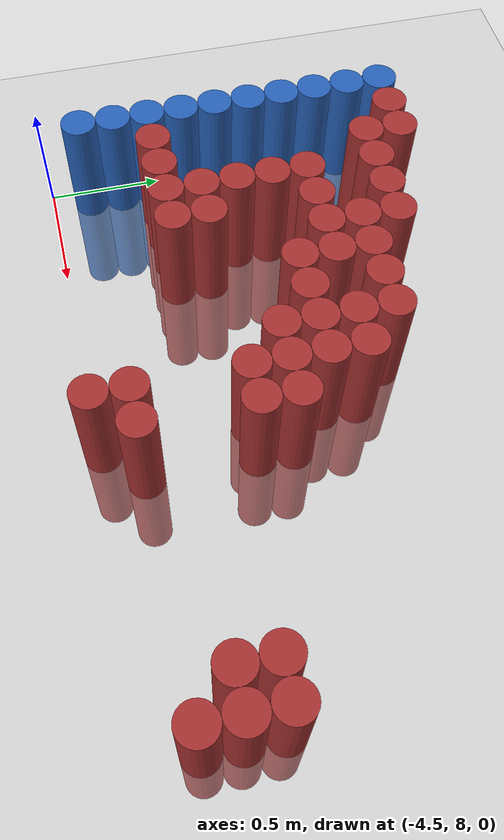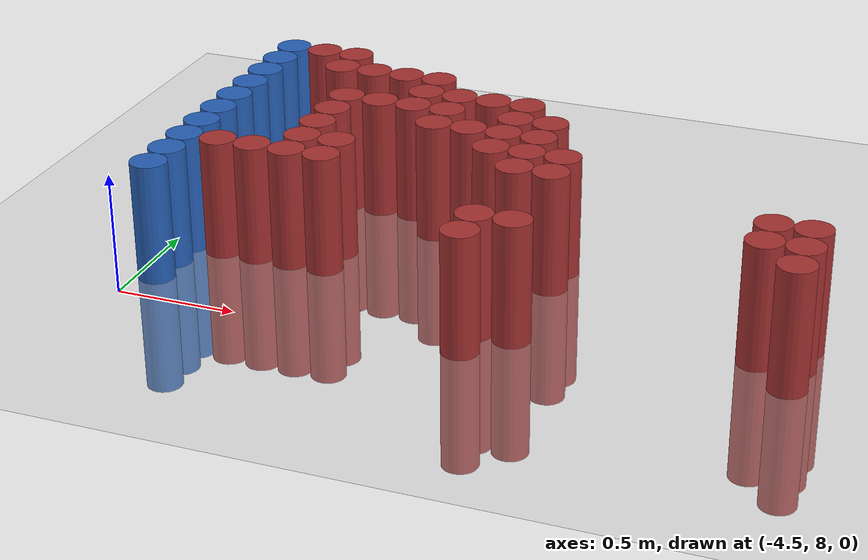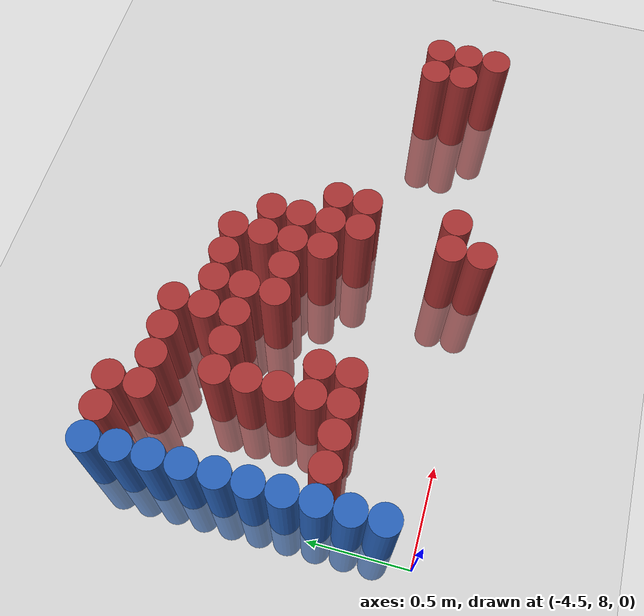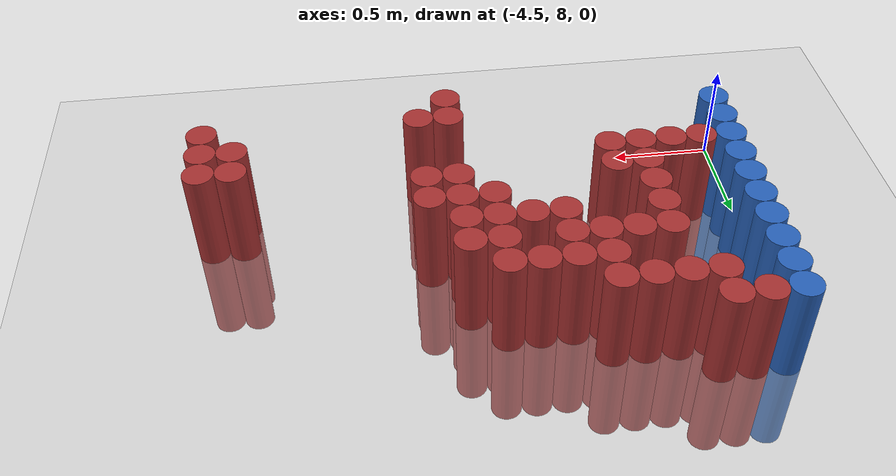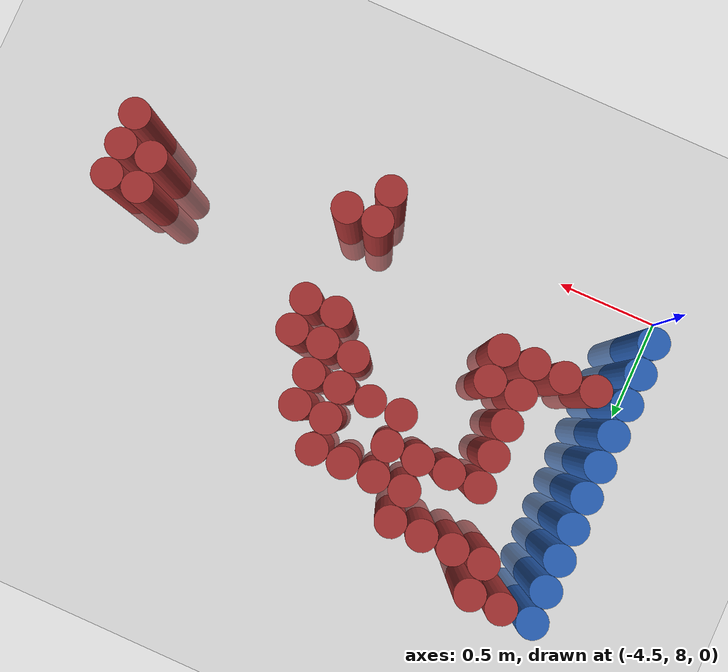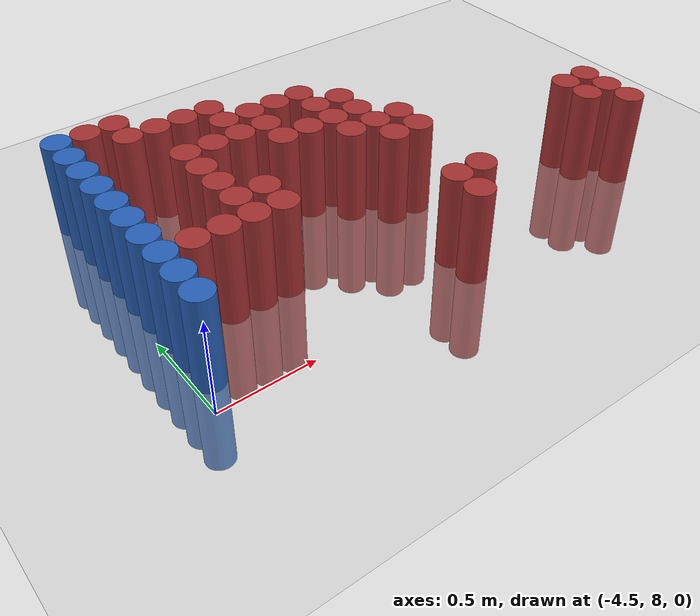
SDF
<sdf version="1.6">
 <world name="default">
  <model name="ground_plane">
   <static>1</static>
   <link name="link">
    <collision name="collision">
     <geometry><plane><normal>0 0 1</normal><size>100 100</size></plane></geometry>
     <surface><friction><ode><mu>100</mu><mu2>50</mu2></ode></friction></surface>
    </collision>
    <visual name="visual">
     <cast_shadows>0</cast_shadows>
     <geometry><plane><normal>0 0 1</normal><size>100 100</size></plane></geometry>
     <material>
      <script><uri>file://media/materials/scripts/gazebo.material</uri><name>Gazebo/Grey</name></script>
     </material>
    </visual>
   </link>
  </model>
  <model name="unit_cylinder_116">
   <static>1</static>
   <pose>-4.425000 8.175000 0.000000 0.000000 0.000000 0.000000</pose>
   <link name="link">
    <inertial>
     <mass>1</mass>
     <inertia><ixx>0.145833</ixx><ixy>0</ixy><ixz>0</ixz><iyy>0.145833</iyy><iyz>0</iyz><izz>0.125</izz></inertia>
    </inertial>
    <collision name="collision">
     <geometry><cylinder><radius>0.075000</radius><length>1</length></cylinder></geometry>
    </collision>
    <visual name="visual">
     <geometry><cylinder><radius>0.075000</radius><length>1</length></cylinder></geometry>
     <material>
      <ambient>0.152000 0.379000 0.720000 1</ambient>
      <diffuse>0.152000 0.379000 0.720000 1</diffuse>
     </material>
     <material>
      <script><name>Gazebo/Grey</name><uri>file://media/materials/scripts/gazebo.material</uri></script>
     </material>
    </visual>
   </link>
  </model>
  <model name="unit_cylinder_117">
   <static>1</static>
   <pose>-4.425000 8.325000 0.000000 0.000000 0.000000 0.000000</pose>
   <link name="link">
    <inertial>
     <mass>1</mass>
     <inertia><ixx>0.145833</ixx><ixy>0</ixy><ixz>0</ixz><iyy>0.145833</iyy><iyz>0</iyz><izz>0.125</izz></inertia>
    </inertial>
    <collision name="collision">
     <geometry><cylinder><radius>0.075000</radius><length>1</length></cylinder></geometry>
    </collision>
    <visual name="visual">
     <geometry><cylinder><radius>0.075000</radius><length>1</length></cylinder></geometry>
     <material>
      <ambient>0.152000 0.379000 0.720000 1</ambient>
      <diffuse>0.152000 0.379000 0.720000 1</diffuse>
     </material>
     <material>
      <script><name>Gazebo/Grey</name><uri>file://media/materials/scripts/gazebo.material</uri></script>
     </material>
    </visual>
   </link>
  </model>
  <model name="unit_cylinder_118">
   <static>1</static>
   <pose>-4.425000 8.475000 0.000000 0.000000 0.000000 0.000000</pose>
   <link name="link">
    <inertial>
     <mass>1</mass>
     <inertia><ixx>0.145833</ixx><ixy>0</ixy><ixz>0</ixz><iyy>0.145833</iyy><iyz>0</iyz><izz>0.125</izz></inertia>
    </inertial>
    <collision name="collision">
     <geometry><cylinder><radius>0.075000</radius><length>1</length></cylinder></geometry>
    </collision>
    <visual name="visual">
     <geometry><cylinder><radius>0.075000</radius><length>1</length></cylinder></geometry>
     <material>
      <ambient>0.152000 0.379000 0.720000 1</ambient>
      <diffuse>0.152000 0.379000 0.720000 1</diffuse>
     </material>
     <material>
      <script><name>Gazebo/Grey</name><uri>file://media/materials/scripts/gazebo.material</uri></script>
     </material>
    </visual>
   </link>
  </model>
  <model name="unit_cylinder_119">
   <static>1</static>
   <pose>-4.425000 8.625000 0.000000 0.000000 0.000000 0.000000</pose>
   <link name="link">
    <inertial>
     <mass>1</mass>
     <inertia><ixx>0.145833</ixx><ixy>0</ixy><ixz>0</ixz><iyy>0.145833</iyy><iyz>0</iyz><izz>0.125</izz></inertia>
    </inertial>
    <collision name="collision">
     <geometry><cylinder><radius>0.075000</radius><length>1</length></cylinder></geometry>
    </collision>
    <visual name="visual">
     <geometry><cylinder><radius>0.075000</radius><length>1</length></cylinder></geometry>
     <material>
      <ambient>0.152000 0.379000 0.720000 1</ambient>
      <diffuse>0.152000 0.379000 0.720000 1</diffuse>
     </material>
     <material>
      <script><name>Gazebo/Grey</name><uri>file://media/materials/scripts/gazebo.material</uri></script>
     </material>
    </visual>
   </link>
  </model>
  <model name="unit_cylinder_120">
   <static>1</static>
   <pose>-4.425000 8.775000 0.000000 0.000000 0.000000 0.000000</pose>
   <link name="link">
    <inertial>
     <mass>1</mass>
     <inertia><ixx>0.145833</ixx><ixy>0</ixy><ixz>0</ixz><iyy>0.145833</iyy><iyz>0</iyz><izz>0.125</izz></inertia>
    </inertial>
    <collision name="collision">
     <geometry><cylinder><radius>0.075000</radius><length>1</length></cylinder></geometry>
    </collision>
    <visual name="visual">
     <geometry><cylinder><radius>0.075000</radius><length>1</length></cylinder></geometry>
     <material>
      <ambient>0.152000 0.379000 0.720000 1</ambient>
      <diffuse>0.152000 0.379000 0.720000 1</diffuse>
     </material>
     <material>
      <script><name>Gazebo/Grey</name><uri>file://media/materials/scripts/gazebo.material</uri></script>
     </material>
    </visual>
   </link>
  </model>
  <model name="unit_cylinder_121">
   <static>1</static>
   <pose>-4.425000 8.925000 0.000000 0.000000 0.000000 0.000000</pose>
   <link name="link">
    <inertial>
     <mass>1</mass>
     <inertia><ixx>0.145833</ixx><ixy>0</ixy><ixz>0</ixz><iyy>0.145833</iyy><iyz>0</iyz><izz>0.125</izz></inertia>
    </inertial>
    <collision name="collision">
     <geometry><cylinder><radius>0.075000</radius><length>1</length></cylinder></geometry>
    </collision>
    <visual name="visual">
     <geometry><cylinder><radius>0.075000</radius><length>1</length></cylinder></geometry>
     <material>
      <ambient>0.152000 0.379000 0.720000 1</ambient>
      <diffuse>0.152000 0.379000 0.720000 1</diffuse>
     </material>
     <material>
      <script><name>Gazebo/Grey</name><uri>file://media/materials/scripts/gazebo.material</uri></script>
     </material>
    </visual>
   </link>
  </model>
  <model name="unit_cylinder_122">
   <static>1</static>
   <pose>-4.425000 9.075000 0.000000 0.000000 0.000000 0.000000</pose>
   <link name="link">
    <inertial>
     <mass>1</mass>
     <inertia><ixx>0.145833</ixx><ixy>0</ixy><ixz>0</ixz><iyy>0.145833</iyy><iyz>0</iyz><izz>0.125</izz></inertia>
    </inertial>
    <collision name="collision">
     <geometry><cylinder><radius>0.075000</radius><length>1</length></cylinder></geometry>
    </collision>
    <visual name="visual">
     <geometry><cylinder><radius>0.075000</radius><length>1</length></cylinder></geometry>
     <material>
      <ambient>0.152000 0.379000 0.720000 1</ambient>
      <diffuse>0.152000 0.379000 0.720000 1</diffuse>
     </material>
     <material>
      <script><name>Gazebo/Grey</name><uri>file://media/materials/scripts/gazebo.material</uri></script>
     </material>
    </visual>
   </link>
  </model>
  <model name="unit_cylinder_123">
   <static>1</static>
   <pose>-4.425000 9.225000 0.000000 0.000000 0.000000 0.000000</pose>
   <link name="link">
    <inertial>
     <mass>1</mass>
     <inertia><ixx>0.145833</ixx><ixy>0</ixy><ixz>0</ixz><iyy>0.145833</iyy><iyz>0</iyz><izz>0.125</izz></inertia>
    </inertial>
    <collision name="collision">
     <geometry><cylinder><radius>0.075000</radius><length>1</length></cylinder></geometry>
    </collision>
    <visual name="visual">
     <geometry><cylinder><radius>0.075000</radius><length>1</length></cylinder></geometry>
     <material>
      <ambient>0.152000 0.379000 0.720000 1</ambient>
      <diffuse>0.152000 0.379000 0.720000 1</diffuse>
     </material>
     <material>
      <script><name>Gazebo/Grey</name><uri>file://media/materials/scripts/gazebo.material</uri></script>
     </material>
    </visual>
   </link>
  </model>
  <model name="unit_cylinder_124">
   <static>1</static>
   <pose>-4.425000 9.375000 0.000000 0.000000 0.000000 0.000000</pose>
   <link name="link">
    <inertial>
     <mass>1</mass>
     <inertia><ixx>0.145833</ixx><ixy>0</ixy><ixz>0</ixz><iyy>0.145833</iyy><iyz>0</iyz><izz>0.125</izz></inertia>
    </inertial>
    <collision name="collision">
     <geometry><cylinder><radius>0.075000</radius><length>1</length></cylinder></geometry>
    </collision>
    <visual name="visual">
     <geometry><cylinder><radius>0.075000</radius><length>1</length></cylinder></geometry>
     <material>
      <ambient>0.152000 0.379000 0.720000 1</ambient>
      <diffuse>0.152000 0.379000 0.720000 1</diffuse>
     </material>
     <material>
      <script><name>Gazebo/Grey</name><uri>file://media/materials/scripts/gazebo.material</uri></script>
     </material>
    </visual>
   </link>
  </model>
  <model name="unit_cylinder_125">
   <static>1</static>
   <pose>-4.425000 9.525000 0.000000 0.000000 0.000000 0.000000</pose>
   <link name="link">
    <inertial>
     <mass>1</mass>
     <inertia><ixx>0.145833</ixx><ixy>0</ixy><ixz>0</ixz><iyy>0.145833</iyy><iyz>0</iyz><izz>0.125</izz></inertia>
    </inertial>
    <collision name="collision">
     <geometry><cylinder><radius>0.075000</radius><length>1</length></cylinder></geometry>
    </collision>
    <visual name="visual">
     <geometry><cylinder><radius>0.075000</radius><length>1</length></cylinder></geometry>
     <material>
      <ambient>0.152000 0.379000 0.720000 1</ambient>
      <diffuse>0.152000 0.379000 0.720000 1</diffuse>
     </material>
     <material>
      <script><name>Gazebo/Grey</name><uri>file://media/materials/scripts/gazebo.material</uri></script>
     </material>
    </visual>
   </link>
  </model>
  <model name="unit_cylinder_136">
   <static>1</static>
   <pose>-4.275000 8.475000 0.000000 0.000000 0.000000 0.000000</pose>
   <link name="link">
    <inertial>
     <mass>1</mass>
     <inertia><ixx>0.145833</ixx><ixy>0</ixy><ixz>0</ixz><iyy>0.145833</iyy><iyz>0</iyz><izz>0.125</izz></inertia>
    </inertial>
    <collision name="collision">
     <geometry><cylinder><radius>0.075000</radius><length>1</length></cylinder></geometry>
    </collision>
    <visual name="visual">
     <geometry><cylinder><radius>0.075000</radius><length>1</length></cylinder></geometry>
     <material>
      <ambient>0.648000 0.192000 0.192000 1</ambient>
      <diffuse>0.648000 0.192000 0.192000 1</diffuse>
     </material>
     <material>
      <script><name>Gazebo/Grey</name><uri>file://media/materials/scripts/gazebo.material</uri></script>
     </material>
    </visual>
   </link>
  </model>
  <model name="unit_cylinder_137">
   <static>1</static>
   <pose>-4.275000 9.525000 0.000000 0.000000 0.000000 0.000000</pose>
   <link name="link">
    <inertial>
     <mass>1</mass>
     <inertia><ixx>0.145833</ixx><ixy>0</ixy><ixz>0</ixz><iyy>0.145833</iyy><iyz>0</iyz><izz>0.125</izz></inertia>
    </inertial>
    <collision name="collision">
     <geometry><cylinder><radius>0.075000</radius><length>1</length></cylinder></geometry>
    </collision>
    <visual name="visual">
     <geometry><cylinder><radius>0.075000</radius><length>1</length></cylinder></geometry>
     <material>
      <ambient>0.648000 0.192000 0.192000 1</ambient>
      <diffuse>0.648000 0.192000 0.192000 1</diffuse>
     </material>
     <material>
      <script><name>Gazebo/Grey</name><uri>file://media/materials/scripts/gazebo.material</uri></script>
     </material>
    </visual>
   </link>
  </model>
  <model name="unit_cylinder_142">
   <static>1</static>
   <pose>-4.125000 8.475000 0.000000 0.000000 0.000000 0.000000</pose>
   <link name="link">
    <inertial>
     <mass>1</mass>
     <inertia><ixx>0.145833</ixx><ixy>0</ixy><ixz>0</ixz><iyy>0.145833</iyy><iyz>0</iyz><izz>0.125</izz></inertia>
    </inertial>
    <collision name="collision">
     <geometry><cylinder><radius>0.075000</radius><length>1</length></cylinder></geometry>
    </collision>
    <visual name="visual">
     <geometry><cylinder><radius>0.075000</radius><length>1</length></cylinder></geometry>
     <material>
      <ambient>0.648000 0.192000 0.192000 1</ambient>
      <diffuse>0.648000 0.192000 0.192000 1</diffuse>
     </material>
     <material>
      <script><name>Gazebo/Grey</name><uri>file://media/materials/scripts/gazebo.material</uri></script>
     </material>
    </visual>
   </link>
  </model>
  <model name="unit_cylinder_143">
   <static>1</static>
   <pose>-4.125000 9.375000 0.000000 0.000000 0.000000 0.000000</pose>
   <link name="link">
    <inertial>
     <mass>1</mass>
     <inertia><ixx>0.145833</ixx><ixy>0</ixy><ixz>0</ixz><iyy>0.145833</iyy><iyz>0</iyz><izz>0.125</izz></inertia>
    </inertial>
    <collision name="collision">
     <geometry><cylinder><radius>0.075000</radius><length>1</length></cylinder></geometry>
    </collision>
    <visual name="visual">
     <geometry><cylinder><radius>0.075000</radius><length>1</length></cylinder></geometry>
     <material>
      <ambient>0.648000 0.192000 0.192000 1</ambient>
      <diffuse>0.648000 0.192000 0.192000 1</diffuse>
     </material>
     <material>
      <script><name>Gazebo/Grey</name><uri>file://media/materials/scripts/gazebo.material</uri></script>
     </material>
    </visual>
   </link>
  </model>
  <model name="unit_cylinder_144">
   <static>1</static>
   <pose>-4.125000 9.525000 0.000000 0.000000 0.000000 0.000000</pose>
   <link name="link">
    <inertial>
     <mass>1</mass>
     <inertia><ixx>0.145833</ixx><ixy>0</ixy><ixz>0</ixz><iyy>0.145833</iyy><iyz>0</iyz><izz>0.125</izz></inertia>
    </inertial>
    <collision name="collision">
     <geometry><cylinder><radius>0.075000</radius><length>1</length></cylinder></geometry>
    </collision>
    <visual name="visual">
     <geometry><cylinder><radius>0.075000</radius><length>1</length></cylinder></geometry>
     <material>
      <ambient>0.648000 0.192000 0.192000 1</ambient>
      <diffuse>0.648000 0.192000 0.192000 1</diffuse>
     </material>
     <material>
      <script><name>Gazebo/Grey</name><uri>file://media/materials/scripts/gazebo.material</uri></script>
     </material>
    </visual>
   </link>
  </model>
  <model name="unit_cylinder_151">
   <static>1</static>
   <pose>-3.975000 8.475000 0.000000 0.000000 0.000000 0.000000</pose>
   <link name="link">
    <inertial>
     <mass>1</mass>
     <inertia><ixx>0.145833</ixx><ixy>0</ixy><ixz>0</ixz><iyy>0.145833</iyy><iyz>0</iyz><izz>0.125</izz></inertia>
    </inertial>
    <collision name="collision">
     <geometry><cylinder><radius>0.075000</radius><length>1</length></cylinder></geometry>
    </collision>
    <visual name="visual">
     <geometry><cylinder><radius>0.075000</radius><length>1</length></cylinder></geometry>
     <material>
      <ambient>0.648000 0.192000 0.192000 1</ambient>
      <diffuse>0.648000 0.192000 0.192000 1</diffuse>
     </material>
     <material>
      <script><name>Gazebo/Grey</name><uri>file://media/materials/scripts/gazebo.material</uri></script>
     </material>
    </visual>
   </link>
  </model>
  <model name="unit_cylinder_152">
   <static>1</static>
   <pose>-3.975000 8.625000 0.000000 0.000000 0.000000 0.000000</pose>
   <link name="link">
    <inertial>
     <mass>1</mass>
     <inertia><ixx>0.145833</ixx><ixy>0</ixy><ixz>0</ixz><iyy>0.145833</iyy><iyz>0</iyz><izz>0.125</izz></inertia>
    </inertial>
    <collision name="collision">
     <geometry><cylinder><radius>0.075000</radius><length>1</length></cylinder></geometry>
    </collision>
    <visual name="visual">
     <geometry><cylinder><radius>0.075000</radius><length>1</length></cylinder></geometry>
     <material>
      <ambient>0.648000 0.192000 0.192000 1</ambient>
      <diffuse>0.648000 0.192000 0.192000 1</diffuse>
     </material>
     <material>
      <script><name>Gazebo/Grey</name><uri>file://media/materials/scripts/gazebo.material</uri></script>
     </material>
    </visual>
   </link>
  </model>
  <model name="unit_cylinder_153">
   <static>1</static>
   <pose>-3.975000 8.775000 0.000000 0.000000 0.000000 0.000000</pose>
   <link name="link">
    <inertial>
     <mass>1</mass>
     <inertia><ixx>0.145833</ixx><ixy>0</ixy><ixz>0</ixz><iyy>0.145833</iyy><iyz>0</iyz><izz>0.125</izz></inertia>
    </inertial>
    <collision name="collision">
     <geometry><cylinder><radius>0.075000</radius><length>1</length></cylinder></geometry>
    </collision>
    <visual name="visual">
     <geometry><cylinder><radius>0.075000</radius><length>1</length></cylinder></geometry>
     <material>
      <ambient>0.648000 0.192000 0.192000 1</ambient>
      <diffuse>0.648000 0.192000 0.192000 1</diffuse>
     </material>
     <material>
      <script><name>Gazebo/Grey</name><uri>file://media/materials/scripts/gazebo.material</uri></script>
     </material>
    </visual>
   </link>
  </model>
  <model name="unit_cylinder_154">
   <static>1</static>
   <pose>-3.975000 8.925000 0.000000 0.000000 0.000000 0.000000</pose>
   <link name="link">
    <inertial>
     <mass>1</mass>
     <inertia><ixx>0.145833</ixx><ixy>0</ixy><ixz>0</ixz><iyy>0.145833</iyy><iyz>0</iyz><izz>0.125</izz></inertia>
    </inertial>
    <collision name="collision">
     <geometry><cylinder><radius>0.075000</radius><length>1</length></cylinder></geometry>
    </collision>
    <visual name="visual">
     <geometry><cylinder><radius>0.075000</radius><length>1</length></cylinder></geometry>
     <material>
      <ambient>0.648000 0.192000 0.192000 1</ambient>
      <diffuse>0.648000 0.192000 0.192000 1</diffuse>
     </material>
     <material>
      <script><name>Gazebo/Grey</name><uri>file://media/materials/scripts/gazebo.material</uri></script>
     </material>
    </visual>
   </link>
  </model>
  <model name="unit_cylinder_155">
   <static>1</static>
   <pose>-3.975000 9.075000 0.000000 0.000000 0.000000 0.000000</pose>
   <link name="link">
    <inertial>
     <mass>1</mass>
     <inertia><ixx>0.145833</ixx><ixy>0</ixy><ixz>0</ixz><iyy>0.145833</iyy><iyz>0</iyz><izz>0.125</izz></inertia>
    </inertial>
    <collision name="collision">
     <geometry><cylinder><radius>0.075000</radius><length>1</length></cylinder></geometry>
    </collision>
    <visual name="visual">
     <geometry><cylinder><radius>0.075000</radius><length>1</length></cylinder></geometry>
     <material>
      <ambient>0.648000 0.192000 0.192000 1</ambient>
      <diffuse>0.648000 0.192000 0.192000 1</diffuse>
     </material>
     <material>
      <script><name>Gazebo/Grey</name><uri>file://media/materials/scripts/gazebo.material</uri></script>
     </material>
    </visual>
   </link>
  </model>
  <model name="unit_cylinder_156">
   <static>1</static>
   <pose>-3.975000 9.375000 0.000000 0.000000 0.000000 0.000000</pose>
   <link name="link">
    <inertial>
     <mass>1</mass>
     <inertia><ixx>0.145833</ixx><ixy>0</ixy><ixz>0</ixz><iyy>0.145833</iyy><iyz>0</iyz><izz>0.125</izz></inertia>
    </inertial>
    <collision name="collision">
     <geometry><cylinder><radius>0.075000</radius><length>1</length></cylinder></geometry>
    </collision>
    <visual name="visual">
     <geometry><cylinder><radius>0.075000</radius><length>1</length></cylinder></geometry>
     <material>
      <ambient>0.648000 0.192000 0.192000 1</ambient>
      <diffuse>0.648000 0.192000 0.192000 1</diffuse>
     </material>
     <material>
      <script><name>Gazebo/Grey</name><uri>file://media/materials/scripts/gazebo.material</uri></script>
     </material>
    </visual>
   </link>
  </model>
  <model name="unit_cylinder_162">
   <static>1</static>
   <pose>-3.825000 8.475000 0.000000 0.000000 0.000000 0.000000</pose>
   <link name="link">
    <inertial>
     <mass>1</mass>
     <inertia><ixx>0.145833</ixx><ixy>0</ixy><ixz>0</ixz><iyy>0.145833</iyy><iyz>0</iyz><izz>0.125</izz></inertia>
    </inertial>
    <collision name="collision">
     <geometry><cylinder><radius>0.075000</radius><length>1</length></cylinder></geometry>
    </collision>
    <visual name="visual">
     <geometry><cylinder><radius>0.075000</radius><length>1</length></cylinder></geometry>
     <material>
      <ambient>0.648000 0.192000 0.192000 1</ambient>
      <diffuse>0.648000 0.192000 0.192000 1</diffuse>
     </material>
     <material>
      <script><name>Gazebo/Grey</name><uri>file://media/materials/scripts/gazebo.material</uri></script>
     </material>
    </visual>
   </link>
  </model>
  <model name="unit_cylinder_163">
   <static>1</static>
   <pose>-3.825000 8.625000 0.000000 0.000000 0.000000 0.000000</pose>
   <link name="link">
    <inertial>
     <mass>1</mass>
     <inertia><ixx>0.145833</ixx><ixy>0</ixy><ixz>0</ixz><iyy>0.145833</iyy><iyz>0</iyz><izz>0.125</izz></inertia>
    </inertial>
    <collision name="collision">
     <geometry><cylinder><radius>0.075000</radius><length>1</length></cylinder></geometry>
    </collision>
    <visual name="visual">
     <geometry><cylinder><radius>0.075000</radius><length>1</length></cylinder></geometry>
     <material>
      <ambient>0.648000 0.192000 0.192000 1</ambient>
      <diffuse>0.648000 0.192000 0.192000 1</diffuse>
     </material>
     <material>
      <script><name>Gazebo/Grey</name><uri>file://media/materials/scripts/gazebo.material</uri></script>
     </material>
    </visual>
   </link>
  </model>
  <model name="unit_cylinder_164">
   <static>1</static>
   <pose>-3.825000 9.075000 0.000000 0.000000 0.000000 0.000000</pose>
   <link name="link">
    <inertial>
     <mass>1</mass>
     <inertia><ixx>0.145833</ixx><ixy>0</ixy><ixz>0</ixz><iyy>0.145833</iyy><iyz>0</iyz><izz>0.125</izz></inertia>
    </inertial>
    <collision name="collision">
     <geometry><cylinder><radius>0.075000</radius><length>1</length></cylinder></geometry>
    </collision>
    <visual name="visual">
     <geometry><cylinder><radius>0.075000</radius><length>1</length></cylinder></geometry>
     <material>
      <ambient>0.648000 0.192000 0.192000 1</ambient>
      <diffuse>0.648000 0.192000 0.192000 1</diffuse>
     </material>
     <material>
      <script><name>Gazebo/Grey</name><uri>file://media/materials/scripts/gazebo.material</uri></script>
     </material>
    </visual>
   </link>
  </model>
  <model name="unit_cylinder_165">
   <static>1</static>
   <pose>-3.825000 9.375000 0.000000 0.000000 0.000000 0.000000</pose>
   <link name="link">
    <inertial>
     <mass>1</mass>
     <inertia><ixx>0.145833</ixx><ixy>0</ixy><ixz>0</ixz><iyy>0.145833</iyy><iyz>0</iyz><izz>0.125</izz></inertia>
    </inertial>
    <collision name="collision">
     <geometry><cylinder><radius>0.075000</radius><length>1</length></cylinder></geometry>
    </collision>
    <visual name="visual">
     <geometry><cylinder><radius>0.075000</radius><length>1</length></cylinder></geometry>
     <material>
      <ambient>0.648000 0.192000 0.192000 1</ambient>
      <diffuse>0.648000 0.192000 0.192000 1</diffuse>
     </material>
     <material>
      <script><name>Gazebo/Grey</name><uri>file://media/materials/scripts/gazebo.material</uri></script>
     </material>
    </visual>
   </link>
  </model>
  <model name="unit_cylinder_171">
   <static>1</static>
   <pose>-3.675000 9.075000 0.000000 0.000000 0.000000 0.000000</pose>
   <link name="link">
    <inertial>
     <mass>1</mass>
     <inertia><ixx>0.145833</ixx><ixy>0</ixy><ixz>0</ixz><iyy>0.145833</iyy><iyz>0</iyz><izz>0.125</izz></inertia>
    </inertial>
    <collision name="collision">
     <geometry><cylinder><radius>0.075000</radius><length>1</length></cylinder></geometry>
    </collision>
    <visual name="visual">
     <geometry><cylinder><radius>0.075000</radius><length>1</length></cylinder></geometry>
     <material>
      <ambient>0.648000 0.192000 0.192000 1</ambient>
      <diffuse>0.648000 0.192000 0.192000 1</diffuse>
     </material>
     <material>
      <script><name>Gazebo/Grey</name><uri>file://media/materials/scripts/gazebo.material</uri></script>
     </material>
    </visual>
   </link>
  </model>
  <model name="unit_cylinder_172">
   <static>1</static>
   <pose>-3.675000 9.225000 0.000000 0.000000 0.000000 0.000000</pose>
   <link name="link">
    <inertial>
     <mass>1</mass>
     <inertia><ixx>0.145833</ixx><ixy>0</ixy><ixz>0</ixz><iyy>0.145833</iyy><iyz>0</iyz><izz>0.125</izz></inertia>
    </inertial>
    <collision name="collision">
     <geometry><cylinder><radius>0.075000</radius><length>1</length></cylinder></geometry>
    </collision>
    <visual name="visual">
     <geometry><cylinder><radius>0.075000</radius><length>1</length></cylinder></geometry>
     <material>
      <ambient>0.648000 0.192000 0.192000 1</ambient>
      <diffuse>0.648000 0.192000 0.192000 1</diffuse>
     </material>
     <material>
      <script><name>Gazebo/Grey</name><uri>file://media/materials/scripts/gazebo.material</uri></script>
     </material>
    </visual>
   </link>
  </model>
  <model name="unit_cylinder_173">
   <static>1</static>
   <pose>-3.675000 9.375000 0.000000 0.000000 0.000000 0.000000</pose>
   <link name="link">
    <inertial>
     <mass>1</mass>
     <inertia><ixx>0.145833</ixx><ixy>0</ixy><ixz>0</ixz><iyy>0.145833</iyy><iyz>0</iyz><izz>0.125</izz></inertia>
    </inertial>
    <collision name="collision">
     <geometry><cylinder><radius>0.075000</radius><length>1</length></cylinder></geometry>
    </collision>
    <visual name="visual">
     <geometry><cylinder><radius>0.075000</radius><length>1</length></cylinder></geometry>
     <material>
      <ambient>0.648000 0.192000 0.192000 1</ambient>
      <diffuse>0.648000 0.192000 0.192000 1</diffuse>
     </material>
     <material>
      <script><name>Gazebo/Grey</name><uri>file://media/materials/scripts/gazebo.material</uri></script>
     </material>
    </visual>
   </link>
  </model>
  <model name="unit_cylinder_176">
   <static>1</static>
   <pose>-3.525000 8.925000 0.000000 0.000000 0.000000 0.000000</pose>
   <link name="link">
    <inertial>
     <mass>1</mass>
     <inertia><ixx>0.145833</ixx><ixy>0</ixy><ixz>0</ixz><iyy>0.145833</iyy><iyz>0</iyz><izz>0.125</izz></inertia>
    </inertial>
    <collision name="collision">
     <geometry><cylinder><radius>0.075000</radius><length>1</length></cylinder></geometry>
    </collision>
    <visual name="visual">
     <geometry><cylinder><radius>0.075000</radius><length>1</length></cylinder></geometry>
     <material>
      <ambient>0.648000 0.192000 0.192000 1</ambient>
      <diffuse>0.648000 0.192000 0.192000 1</diffuse>
     </material>
     <material>
      <script><name>Gazebo/Grey</name><uri>file://media/materials/scripts/gazebo.material</uri></script>
     </material>
    </visual>
   </link>
  </model>
  <model name="unit_cylinder_177">
   <static>1</static>
   <pose>-3.525000 9.075000 0.000000 0.000000 0.000000 0.000000</pose>
   <link name="link">
    <inertial>
     <mass>1</mass>
     <inertia><ixx>0.145833</ixx><ixy>0</ixy><ixz>0</ixz><iyy>0.145833</iyy><iyz>0</iyz><izz>0.125</izz></inertia>
    </inertial>
    <collision name="collision">
     <geometry><cylinder><radius>0.075000</radius><length>1</length></cylinder></geometry>
    </collision>
    <visual name="visual">
     <geometry><cylinder><radius>0.075000</radius><length>1</length></cylinder></geometry>
     <material>
      <ambient>0.648000 0.192000 0.192000 1</ambient>
      <diffuse>0.648000 0.192000 0.192000 1</diffuse>
     </material>
     <material>
      <script><name>Gazebo/Grey</name><uri>file://media/materials/scripts/gazebo.material</uri></script>
     </material>
    </visual>
   </link>
  </model>
  <model name="unit_cylinder_178">
   <static>1</static>
   <pose>-3.525000 9.225000 0.000000 0.000000 0.000000 0.000000</pose>
   <link name="link">
    <inertial>
     <mass>1</mass>
     <inertia><ixx>0.145833</ixx><ixy>0</ixy><ixz>0</ixz><iyy>0.145833</iyy><iyz>0</iyz><izz>0.125</izz></inertia>
    </inertial>
    <collision name="collision">
     <geometry><cylinder><radius>0.075000</radius><length>1</length></cylinder></geometry>
    </collision>
    <visual name="visual">
     <geometry><cylinder><radius>0.075000</radius><length>1</length></cylinder></geometry>
     <material>
      <ambient>0.648000 0.192000 0.192000 1</ambient>
      <diffuse>0.648000 0.192000 0.192000 1</diffuse>
     </material>
     <material>
      <script><name>Gazebo/Grey</name><uri>file://media/materials/scripts/gazebo.material</uri></script>
     </material>
    </visual>
   </link>
  </model>
  <model name="unit_cylinder_180">
   <static>1</static>
   <pose>-3.375000 8.925000 0.000000 0.000000 0.000000 0.000000</pose>
   <link name="link">
    <inertial>
     <mass>1</mass>
     <inertia><ixx>0.145833</ixx><ixy>0</ixy><ixz>0</ixz><iyy>0.145833</iyy><iyz>0</iyz><izz>0.125</izz></inertia>
    </inertial>
    <collision name="collision">
     <geometry><cylinder><radius>0.075000</radius><length>1</length></cylinder></geometry>
    </collision>
    <visual name="visual">
     <geometry><cylinder><radius>0.075000</radius><length>1</length></cylinder></geometry>
     <material>
      <ambient>0.648000 0.192000 0.192000 1</ambient>
      <diffuse>0.648000 0.192000 0.192000 1</diffuse>
     </material>
     <material>
      <script><name>Gazebo/Grey</name><uri>file://media/materials/scripts/gazebo.material</uri></script>
     </material>
    </visual>
   </link>
  </model>
  <model name="unit_cylinder_181">
   <static>1</static>
   <pose>-3.375000 9.225000 0.000000 0.000000 0.000000 0.000000</pose>
   <link name="link">
    <inertial>
     <mass>1</mass>
     <inertia><ixx>0.145833</ixx><ixy>0</ixy><ixz>0</ixz><iyy>0.145833</iyy><iyz>0</iyz><izz>0.125</izz></inertia>
    </inertial>
    <collision name="collision">
     <geometry><cylinder><radius>0.075000</radius><length>1</length></cylinder></geometry>
    </collision>
    <visual name="visual">
     <geometry><cylinder><radius>0.075000</radius><length>1</length></cylinder></geometry>
     <material>
      <ambient>0.648000 0.192000 0.192000 1</ambient>
      <diffuse>0.648000 0.192000 0.192000 1</diffuse>
     </material>
     <material>
      <script><name>Gazebo/Grey</name><uri>file://media/materials/scripts/gazebo.material</uri></script>
     </material>
    </visual>
   </link>
  </model>
  <model name="unit_cylinder_187">
   <static>1</static>
   <pose>-3.225000 8.775000 0.000000 0.000000 0.000000 0.000000</pose>
   <link name="link">
    <inertial>
     <mass>1</mass>
     <inertia><ixx>0.145833</ixx><ixy>0</ixy><ixz>0</ixz><iyy>0.145833</iyy><iyz>0</iyz><izz>0.125</izz></inertia>
    </inertial>
    <collision name="collision">
     <geometry><cylinder><radius>0.075000</radius><length>1</length></cylinder></geometry>
    </collision>
    <visual name="visual">
     <geometry><cylinder><radius>0.075000</radius><length>1</length></cylinder></geometry>
     <material>
      <ambient>0.648000 0.192000 0.192000 1</ambient>
      <diffuse>0.648000 0.192000 0.192000 1</diffuse>
     </material>
     <material>
      <script><name>Gazebo/Grey</name><uri>file://media/materials/scripts/gazebo.material</uri></script>
     </material>
    </visual>
   </link>
  </model>
  <model name="unit_cylinder_188">
   <static>1</static>
   <pose>-3.225000 8.925000 0.000000 0.000000 0.000000 0.000000</pose>
   <link name="link">
    <inertial>
     <mass>1</mass>
     <inertia><ixx>0.145833</ixx><ixy>0</ixy><ixz>0</ixz><iyy>0.145833</iyy><iyz>0</iyz><izz>0.125</izz></inertia>
    </inertial>
    <collision name="collision">
     <geometry><cylinder><radius>0.075000</radius><length>1</length></cylinder></geometry>
    </collision>
    <visual name="visual">
     <geometry><cylinder><radius>0.075000</radius><length>1</length></cylinder></geometry>
     <material>
      <ambient>0.648000 0.192000 0.192000 1</ambient>
      <diffuse>0.648000 0.192000 0.192000 1</diffuse>
     </material>
     <material>
      <script><name>Gazebo/Grey</name><uri>file://media/materials/scripts/gazebo.material</uri></script>
     </material>
    </visual>
   </link>
  </model>
  <model name="unit_cylinder_189">
   <static>1</static>
   <pose>-3.225000 9.075000 0.000000 0.000000 0.000000 0.000000</pose>
   <link name="link">
    <inertial>
     <mass>1</mass>
     <inertia><ixx>0.145833</ixx><ixy>0</ixy><ixz>0</ixz><iyy>0.145833</iyy><iyz>0</iyz><izz>0.125</izz></inertia>
    </inertial>
    <collision name="collision">
     <geometry><cylinder><radius>0.075000</radius><length>1</length></cylinder></geometry>
    </collision>
    <visual name="visual">
     <geometry><cylinder><radius>0.075000</radius><length>1</length></cylinder></geometry>
     <material>
      <ambient>0.648000 0.192000 0.192000 1</ambient>
      <diffuse>0.648000 0.192000 0.192000 1</diffuse>
     </material>
     <material>
      <script><name>Gazebo/Grey</name><uri>file://media/materials/scripts/gazebo.material</uri></script>
     </material>
    </visual>
   </link>
  </model>
  <model name="unit_cylinder_190">
   <static>1</static>
   <pose>-3.225000 9.225000 0.000000 0.000000 0.000000 0.000000</pose>
   <link name="link">
    <inertial>
     <mass>1</mass>
     <inertia><ixx>0.145833</ixx><ixy>0</ixy><ixz>0</ixz><iyy>0.145833</iyy><iyz>0</iyz><izz>0.125</izz></inertia>
    </inertial>
    <collision name="collision">
     <geometry><cylinder><radius>0.075000</radius><length>1</length></cylinder></geometry>
    </collision>
    <visual name="visual">
     <geometry><cylinder><radius>0.075000</radius><length>1</length></cylinder></geometry>
     <material>
      <ambient>0.648000 0.192000 0.192000 1</ambient>
      <diffuse>0.648000 0.192000 0.192000 1</diffuse>
     </material>
     <material>
      <script><name>Gazebo/Grey</name><uri>file://media/materials/scripts/gazebo.material</uri></script>
     </material>
    </visual>
   </link>
  </model>
  <model name="unit_cylinder_195">
   <static>1</static>
   <pose>-3.075000 8.025000 0.000000 0.000000 0.000000 0.000000</pose>
   <link name="link">
    <inertial>
     <mass>1</mass>
     <inertia><ixx>0.145833</ixx><ixy>0</ixy><ixz>0</ixz><iyy>0.145833</iyy><iyz>0</iyz><izz>0.125</izz></inertia>
    </inertial>
    <collision name="collision">
     <geometry><cylinder><radius>0.075000</radius><length>1</length></cylinder></geometry>
    </collision>
    <visual name="visual">
     <geometry><cylinder><radius>0.075000</radius><length>1</length></cylinder></geometry>
     <material>
      <ambient>0.648000 0.192000 0.192000 1</ambient>
      <diffuse>0.648000 0.192000 0.192000 1</diffuse>
     </material>
     <material>
      <script><name>Gazebo/Grey</name><uri>file://media/materials/scripts/gazebo.material</uri></script>
     </material>
    </visual>
   </link>
  </model>
  <model name="unit_cylinder_196">
   <static>1</static>
   <pose>-3.075000 8.175000 0.000000 0.000000 0.000000 0.000000</pose>
   <link name="link">
    <inertial>
     <mass>1</mass>
     <inertia><ixx>0.145833</ixx><ixy>0</ixy><ixz>0</ixz><iyy>0.145833</iyy><iyz>0</iyz><izz>0.125</izz></inertia>
    </inertial>
    <collision name="collision">
     <geometry><cylinder><radius>0.075000</radius><length>1</length></cylinder></geometry>
    </collision>
    <visual name="visual">
     <geometry><cylinder><radius>0.075000</radius><length>1</length></cylinder></geometry>
     <material>
      <ambient>0.648000 0.192000 0.192000 1</ambient>
      <diffuse>0.648000 0.192000 0.192000 1</diffuse>
     </material>
     <material>
      <script><name>Gazebo/Grey</name><uri>file://media/materials/scripts/gazebo.material</uri></script>
     </material>
    </visual>
   </link>
  </model>
  <model name="unit_cylinder_197">
   <static>1</static>
   <pose>-3.075000 8.625000 0.000000 0.000000 0.000000 0.000000</pose>
   <link name="link">
    <inertial>
     <mass>1</mass>
     <inertia><ixx>0.145833</ixx><ixy>0</ixy><ixz>0</ixz><iyy>0.145833</iyy><iyz>0</iyz><izz>0.125</izz></inertia>
    </inertial>
    <collision name="collision">
     <geometry><cylinder><radius>0.075000</radius><length>1</length></cylinder></geometry>
    </collision>
    <visual name="visual">
     <geometry><cylinder><radius>0.075000</radius><length>1</length></cylinder></geometry>
     <material>
      <ambient>0.648000 0.192000 0.192000 1</ambient>
      <diffuse>0.648000 0.192000 0.192000 1</diffuse>
     </material>
     <material>
      <script><name>Gazebo/Grey</name><uri>file://media/materials/scripts/gazebo.material</uri></script>
     </material>
    </visual>
   </link>
  </model>
  <model name="unit_cylinder_198">
   <static>1</static>
   <pose>-3.075000 8.775000 0.000000 0.000000 0.000000 0.000000</pose>
   <link name="link">
    <inertial>
     <mass>1</mass>
     <inertia><ixx>0.145833</ixx><ixy>0</ixy><ixz>0</ixz><iyy>0.145833</iyy><iyz>0</iyz><izz>0.125</izz></inertia>
    </inertial>
    <collision name="collision">
     <geometry><cylinder><radius>0.075000</radius><length>1</length></cylinder></geometry>
    </collision>
    <visual name="visual">
     <geometry><cylinder><radius>0.075000</radius><length>1</length></cylinder></geometry>
     <material>
      <ambient>0.648000 0.192000 0.192000 1</ambient>
      <diffuse>0.648000 0.192000 0.192000 1</diffuse>
     </material>
     <material>
      <script><name>Gazebo/Grey</name><uri>file://media/materials/scripts/gazebo.material</uri></script>
     </material>
    </visual>
   </link>
  </model>
  <model name="unit_cylinder_199">
   <static>1</static>
   <pose>-3.075000 8.925000 0.000000 0.000000 0.000000 0.000000</pose>
   <link name="link">
    <inertial>
     <mass>1</mass>
     <inertia><ixx>0.145833</ixx><ixy>0</ixy><ixz>0</ixz><iyy>0.145833</iyy><iyz>0</iyz><izz>0.125</izz></inertia>
    </inertial>
    <collision name="collision">
     <geometry><cylinder><radius>0.075000</radius><length>1</length></cylinder></geometry>
    </collision>
    <visual name="visual">
     <geometry><cylinder><radius>0.075000</radius><length>1</length></cylinder></geometry>
     <material>
      <ambient>0.648000 0.192000 0.192000 1</ambient>
      <diffuse>0.648000 0.192000 0.192000 1</diffuse>
     </material>
     <material>
      <script><name>Gazebo/Grey</name><uri>file://media/materials/scripts/gazebo.material</uri></script>
     </material>
    </visual>
   </link>
  </model>
  <model name="unit_cylinder_200">
   <static>1</static>
   <pose>-3.075000 9.075000 0.000000 0.000000 0.000000 0.000000</pose>
   <link name="link">
    <inertial>
     <mass>1</mass>
     <inertia><ixx>0.145833</ixx><ixy>0</ixy><ixz>0</ixz><iyy>0.145833</iyy><iyz>0</iyz><izz>0.125</izz></inertia>
    </inertial>
    <collision name="collision">
     <geometry><cylinder><radius>0.075000</radius><length>1</length></cylinder></geometry>
    </collision>
    <visual name="visual">
     <geometry><cylinder><radius>0.075000</radius><length>1</length></cylinder></geometry>
     <material>
      <ambient>0.648000 0.192000 0.192000 1</ambient>
      <diffuse>0.648000 0.192000 0.192000 1</diffuse>
     </material>
     <material>
      <script><name>Gazebo/Grey</name><uri>file://media/materials/scripts/gazebo.material</uri></script>
     </material>
    </visual>
   </link>
  </model>
  <model name="unit_cylinder_203">
   <static>1</static>
   <pose>-2.925000 8.175000 0.000000 0.000000 0.000000 0.000000</pose>
   <link name="link">
    <inertial>
     <mass>1</mass>
     <inertia><ixx>0.145833</ixx><ixy>0</ixy><ixz>0</ixz><iyy>0.145833</iyy><iyz>0</iyz><izz>0.125</izz></inertia>
    </inertial>
    <collision name="collision">
     <geometry><cylinder><radius>0.075000</radius><length>1</length></cylinder></geometry>
    </collision>
    <visual name="visual">
     <geometry><cylinder><radius>0.075000</radius><length>1</length></cylinder></geometry>
     <material>
      <ambient>0.648000 0.192000 0.192000 1</ambient>
      <diffuse>0.648000 0.192000 0.192000 1</diffuse>
     </material>
     <material>
      <script><name>Gazebo/Grey</name><uri>file://media/materials/scripts/gazebo.material</uri></script>
     </material>
    </visual>
   </link>
  </model>
  <model name="unit_cylinder_204">
   <static>1</static>
   <pose>-2.925000 8.625000 0.000000 0.000000 0.000000 0.000000</pose>
   <link name="link">
    <inertial>
     <mass>1</mass>
     <inertia><ixx>0.145833</ixx><ixy>0</ixy><ixz>0</ixz><iyy>0.145833</iyy><iyz>0</iyz><izz>0.125</izz></inertia>
    </inertial>
    <collision name="collision">
     <geometry><cylinder><radius>0.075000</radius><length>1</length></cylinder></geometry>
    </collision>
    <visual name="visual">
     <geometry><cylinder><radius>0.075000</radius><length>1</length></cylinder></geometry>
     <material>
      <ambient>0.648000 0.192000 0.192000 1</ambient>
      <diffuse>0.648000 0.192000 0.192000 1</diffuse>
     </material>
     <material>
      <script><name>Gazebo/Grey</name><uri>file://media/materials/scripts/gazebo.material</uri></script>
     </material>
    </visual>
   </link>
  </model>
  <model name="unit_cylinder_205">
   <static>1</static>
   <pose>-2.925000 8.775000 0.000000 0.000000 0.000000 0.000000</pose>
   <link name="link">
    <inertial>
     <mass>1</mass>
     <inertia><ixx>0.145833</ixx><ixy>0</ixy><ixz>0</ixz><iyy>0.145833</iyy><iyz>0</iyz><izz>0.125</izz></inertia>
    </inertial>
    <collision name="collision">
     <geometry><cylinder><radius>0.075000</radius><length>1</length></cylinder></geometry>
    </collision>
    <visual name="visual">
     <geometry><cylinder><radius>0.075000</radius><length>1</length></cylinder></geometry>
     <material>
      <ambient>0.648000 0.192000 0.192000 1</ambient>
      <diffuse>0.648000 0.192000 0.192000 1</diffuse>
     </material>
     <material>
      <script><name>Gazebo/Grey</name><uri>file://media/materials/scripts/gazebo.material</uri></script>
     </material>
    </visual>
   </link>
  </model>
  <model name="unit_cylinder_208">
   <static>1</static>
   <pose>-2.025000 8.325000 0.000000 0.000000 0.000000 0.000000</pose>
   <link name="link">
    <inertial>
     <mass>1</mass>
     <inertia><ixx>0.145833</ixx><ixy>0</ixy><ixz>0</ixz><iyy>0.145833</iyy><iyz>0</iyz><izz>0.125</izz></inertia>
    </inertial>
    <collision name="collision">
     <geometry><cylinder><radius>0.075000</radius><length>1</length></cylinder></geometry>
    </collision>
    <visual name="visual">
     <geometry><cylinder><radius>0.075000</radius><length>1</length></cylinder></geometry>
     <material>
      <ambient>0.648000 0.192000 0.192000 1</ambient>
      <diffuse>0.648000 0.192000 0.192000 1</diffuse>
     </material>
     <material>
      <script><name>Gazebo/Grey</name><uri>file://media/materials/scripts/gazebo.material</uri></script>
     </material>
    </visual>
   </link>
  </model>
  <model name="unit_cylinder_209">
   <static>1</static>
   <pose>-2.025000 8.475000 0.000000 0.000000 0.000000 0.000000</pose>
   <link name="link">
    <inertial>
     <mass>1</mass>
     <inertia><ixx>0.145833</ixx><ixy>0</ixy><ixz>0</ixz><iyy>0.145833</iyy><iyz>0</iyz><izz>0.125</izz></inertia>
    </inertial>
    <collision name="collision">
     <geometry><cylinder><radius>0.075000</radius><length>1</length></cylinder></geometry>
    </collision>
    <visual name="visual">
     <geometry><cylinder><radius>0.075000</radius><length>1</length></cylinder></geometry>
     <material>
      <ambient>0.648000 0.192000 0.192000 1</ambient>
      <diffuse>0.648000 0.192000 0.192000 1</diffuse>
     </material>
     <material>
      <script><name>Gazebo/Grey</name><uri>file://media/materials/scripts/gazebo.material</uri></script>
     </material>
    </visual>
   </link>
  </model>
  <model name="unit_cylinder_216">
   <static>1</static>
   <pose>-1.875000 8.175000 0.000000 0.000000 0.000000 0.000000</pose>
   <link name="link">
    <inertial>
     <mass>1</mass>
     <inertia><ixx>0.145833</ixx><ixy>0</ixy><ixz>0</ixz><iyy>0.145833</iyy><iyz>0</iyz><izz>0.125</izz></inertia>
    </inertial>
    <collision name="collision">
     <geometry><cylinder><radius>0.075000</radius><length>1</length></cylinder></geometry>
    </collision>
    <visual name="visual">
     <geometry><cylinder><radius>0.075000</radius><length>1</length></cylinder></geometry>
     <material>
      <ambient>0.648000 0.192000 0.192000 1</ambient>
      <diffuse>0.648000 0.192000 0.192000 1</diffuse>
     </material>
     <material>
      <script><name>Gazebo/Grey</name><uri>file://media/materials/scripts/gazebo.material</uri></script>
     </material>
    </visual>
   </link>
  </model>
  <model name="unit_cylinder_217">
   <static>1</static>
   <pose>-1.875000 8.325000 0.000000 0.000000 0.000000 0.000000</pose>
   <link name="link">
    <inertial>
     <mass>1</mass>
     <inertia><ixx>0.145833</ixx><ixy>0</ixy><ixz>0</ixz><iyy>0.145833</iyy><iyz>0</iyz><izz>0.125</izz></inertia>
    </inertial>
    <collision name="collision">
     <geometry><cylinder><radius>0.075000</radius><length>1</length></cylinder></geometry>
    </collision>
    <visual name="visual">
     <geometry><cylinder><radius>0.075000</radius><length>1</length></cylinder></geometry>
     <material>
      <ambient>0.648000 0.192000 0.192000 1</ambient>
      <diffuse>0.648000 0.192000 0.192000 1</diffuse>
     </material>
     <material>
      <script><name>Gazebo/Grey</name><uri>file://media/materials/scripts/gazebo.material</uri></script>
     </material>
    </visual>
   </link>
  </model>
  <model name="unit_cylinder_218">
   <static>1</static>
   <pose>-1.875000 8.475000 0.000000 0.000000 0.000000 0.000000</pose>
   <link name="link">
    <inertial>
     <mass>1</mass>
     <inertia><ixx>0.145833</ixx><ixy>0</ixy><ixz>0</ixz><iyy>0.145833</iyy><iyz>0</iyz><izz>0.125</izz></inertia>
    </inertial>
    <collision name="collision">
     <geometry><cylinder><radius>0.075000</radius><length>1</length></cylinder></geometry>
    </collision>
    <visual name="visual">
     <geometry><cylinder><radius>0.075000</radius><length>1</length></cylinder></geometry>
     <material>
      <ambient>0.648000 0.192000 0.192000 1</ambient>
      <diffuse>0.648000 0.192000 0.192000 1</diffuse>
     </material>
     <material>
      <script><name>Gazebo/Grey</name><uri>file://media/materials/scripts/gazebo.material</uri></script>
     </material>
    </visual>
   </link>
  </model>
 </world>
</sdf>
